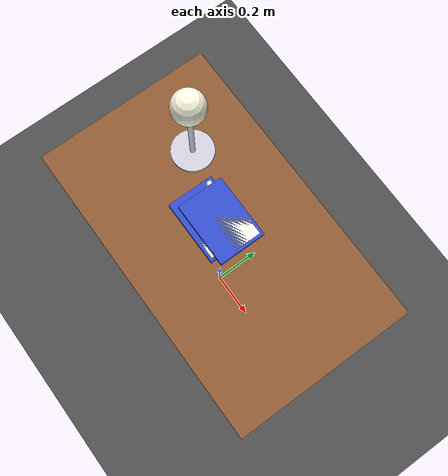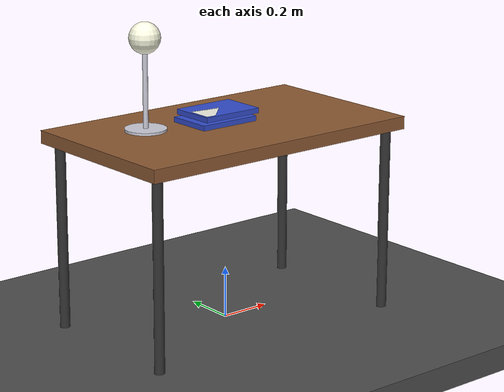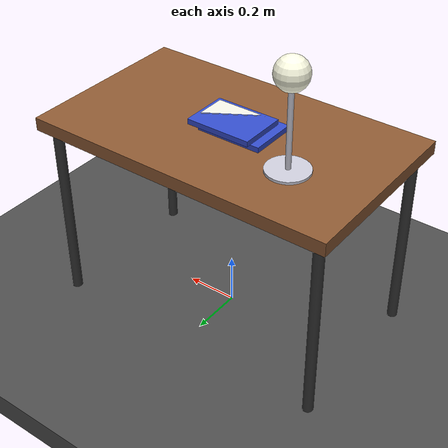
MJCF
<mujoco model="Desk_Scene_Converted">
<compiler angle="degree" coordinate="local" inertiafromgeom="true"/>
<option timestep="0.005" gravity="0 0 -9.81"/>
<asset>
<material name="desk_wood" rgba="0.55 0.35 0.2 1" reflectance="0.2"/>
<material name="lamp_metal" rgba="0.8 0.8 0.85 1" reflectance="0.6"/>
<material name="lamp_light" rgba="1.0 1.0 0.9 1" emission="0.8"/>
<material name="book_cover" rgba="0.2 0.3 0.8 1" reflectance="0.3"/>
<material name="book_pages" rgba="0.95 0.95 0.9 1"/>
<material name="floor_mat" rgba="0.3 0.3 0.3 1"/>
</asset>
<worldbody>
<light directional="true" pos="0 0 3" dir="0 0 -1" diffuse="0.8 0.8 0.8"/>
<geom name="floor" type="box" size="5 5 0.05" pos="0 0 -0.05" material="floor_mat"/>
<body name="desk_body" pos="0 0 0.75">
<geom name="desk_top" type="box" size="0.6 0.35 0.025" material="desk_wood"/>
<geom type="cylinder" size="0.02 0.375" pos="0.55 0.3 -0.375" rgba="0.2 0.2 0.2 1"/>
<geom type="cylinder" size="0.02 0.375" pos="-0.55 0.3 -0.375" rgba="0.2 0.2 0.2 1"/>
<geom type="cylinder" size="0.02 0.375" pos="0.55 -0.3 -0.375" rgba="0.2 0.2 0.2 1"/>
<geom type="cylinder" size="0.02 0.375" pos="-0.55 -0.3 -0.375" rgba="0.2 0.2 0.2 1"/>
</body>
<body name="desk_lamp" pos="-0.3 0.1 0.775">
<geom name="lamp_base" type="cylinder" size="0.08 0.01" material="lamp_metal"/>
<geom name="lamp_stem" type="cylinder" size="0.01 0.175" pos="0 0 0.175" material="lamp_metal"/>
<body name="lamp_head_body" pos="0 0 0.35">
<geom name="lamp_head" type="sphere" size="0.06" material="lamp_light"/>
<light name="lamp_spot" pos="0 0 0" dir="0 0 -1" diffuse="1 1 0.8" cutoff="45"/>
</body>
</body>
<body name="book_1" pos="-0.05 0 0.8">
<freejoint/>
<geom name="book_1_cover" type="box" size="0.125 0.09 0.01" material="book_cover"/>
<geom name="book_1_pages" type="box" size="0.115 0.08 0.008" pos="0 0 0.002" material="book_pages"/>
</body>
<body name="book_2" pos="-0.02 0.02 0.822">
<freejoint/>
<geom name="book_2_cover" type="box" size="0.125 0.09 0.01" material="book_cover"/>
<geom name="book_2_pages" type="box" size="0.115 0.08 0.008" pos="0 0 0.002" material="book_pages"/>
</body>
</worldbody>
</mujoco>
